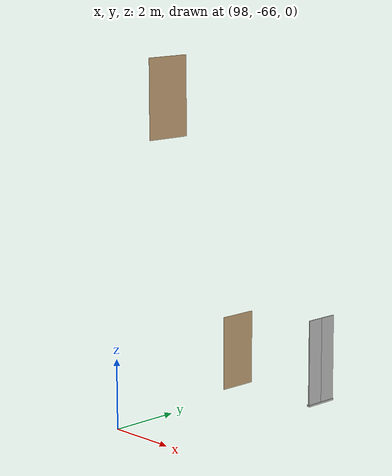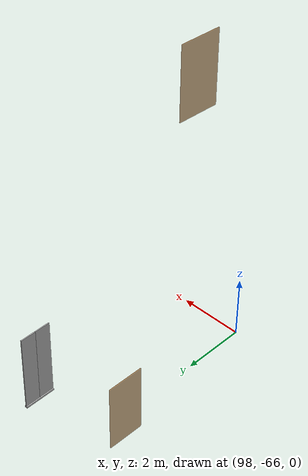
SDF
<sdf version="1.7">
 <world name="sim_world">
  <model name="puerta125">
   <pose>97.43174617866951 -60.814312581254526 0.0 0 0 -1.5801746288038012</pose>
   <link name="right">
    <pose>0 0 1.11 0 0 0</pose>
    <visual name="right_visual">
     <geometry><box><size>1.1295281473367405 0.03 2.2</size></box></geometry>
     <material>
      <ambient>0.5 0.25 0 0.6</ambient>
      <diffuse>0.5 0.25 0 0.6</diffuse>
      <pbr><metal><metalness>0.0</metalness></metal></pbr>
     </material>
    </visual>
    <collision name="right_collision">
     <geometry><box><size>1.1295281473367405 0.03 2.2</size></box></geometry>
     <surface><contact><collide_bitmask>0x02</collide_bitmask></contact></surface>
    </collision>
    <inertial>
     <mass>50.0</mass>
     <inertia><ixx>20.17041666666667</ixx><iyy>25.48264098177488</iyy><izz>5.319724315108205</izz></inertia>
    </inertial>
   </link>
   <joint name="right_joint" type="revolute">
    <parent>world</parent>
    <child>right</child>
    <axis><xyz>0 0 -1</xyz><limit><lower>0</lower><upper>1.57</upper></limit></axis>
    <pose>0.5697640736683702 0 0 0 0 0</pose>
   </joint>
   <plugin name="register_component" filename="libregister_component.so">
    <component name="Door">
     <v_max_door>0.5</v_max_door>
     <a_max_door>0.3</a_max_door>
     <a_nom_door>0.15</a_nom_door>
     <dx_min_door>0.01</dx_min_door>
     <f_max_door>500.0</f_max_door>
     <ros_interface>true</ros_interface>
     <door name="puerta125" type="SwingDoor" left_joint_name="empty_joint" right_joint_name="right_joint"/>
    </component>
   </plugin>
  </model>
  <model name="puerta200">
   <pose>98.66129579037606 -64.64360542609307 8.0 0 0 -1.6164090595668892</pose>
   <link name="right">
    <pose>0 0 1.11 0 0 0</pose>
    <visual name="right_visual">
     <geometry><box><size>1.2578228167331826 0.03 2.2</size></box></geometry>
     <material>
      <ambient>0.5 0.25 0 0.6</ambient>
      <diffuse>0.5 0.25 0 0.6</diffuse>
      <pbr><metal><metalness>0.0</metalness></metal></pbr>
     </material>
    </visual>
    <collision name="right_collision">
     <geometry><box><size>1.2578228167331826 0.03 2.2</size></box></geometry>
     <surface><contact><collide_bitmask>0x02</collide_bitmask></contact></surface>
    </collision>
    <inertial>
     <mass>50.0</mass>
     <inertia><ixx>20.17041666666667</ixx><iyy>26.758825992894163</iyy><izz>6.59590932622749</izz></inertia>
    </inertial>
   </link>
   <joint name="right_joint" type="revolute">
    <parent>world</parent>
    <child>right</child>
    <axis><xyz>0 0 -1</xyz><limit><lower>0</lower><upper>1.57</upper></limit></axis>
    <pose>0.6339114083665913 0 0 0 0 0</pose>
   </joint>
   <plugin name="register_component" filename="libregister_component.so">
    <component name="Door">
     <v_max_door>0.5</v_max_door>
     <a_max_door>0.3</a_max_door>
     <a_nom_door>0.15</a_nom_door>
     <dx_min_door>0.01</dx_min_door>
     <f_max_door>500.0</f_max_door>
     <ros_interface>true</ros_interface>
     <door name="puerta200" type="SwingDoor" left_joint_name="empty_joint" right_joint_name="right_joint"/>
    </component>
   </plugin>
  </model>
  <model name="ShaftDoor_lift1_planta_1_lift1">
   <pose>100.1814098006134 -60.16518076902038 0.0 0 0 1.5707</pose>
   <link name="right_door">
    <pose>0.25 0 1.25 0 0 0</pose>
    <visual name="right_door_visual">
     <geometry><box><size>0.5 0.03 2.5</size></box></geometry>
     <material>
      <ambient>0.5 0.5 0.5 1</ambient>
      <diffuse>0.7 0.7 0.7 1</diffuse>
      <specular>0.6 0.6 0.6 1</specular>
      <emissive>0.1 0.1 0.1 1</emissive>
     </material>
    </visual>
    <collision name="right_door_collision">
     <geometry><box><size>0.5 0.03 2.5</size></box></geometry>
     <surface><contact><collide_bitmask>0x02</collide_bitmask></contact></surface>
    </collision>
   </link>
   <link name="left_door">
    <pose>-0.25 0 1.25 0 0 0</pose>
    <visual name="left_door_visual">
     <geometry><box><size>0.5 0.03 2.5</size></box></geometry>
     <material>
      <ambient>0.5 0.5 0.5 1</ambient>
      <diffuse>0.7 0.7 0.7 1</diffuse>
      <specular>0.6 0.6 0.6 1</specular>
      <emissive>0.1 0.1 0.1 1</emissive>
     </material>
    </visual>
    <collision name="left_door_collision">
     <geometry><box><size>0.5 0.03 2.5</size></box></geometry>
     <surface><contact><collide_bitmask>0x02</collide_bitmask></contact></surface>
    </collision>
   </link>
   <joint name="right_joint" type="prismatic">
    <parent>world</parent>
    <child>right_door</child>
    <axis><xyz>1 0 0</xyz><limit><lower>0</lower><upper>0.5</upper></limit></axis>
   </joint>
   <joint name="left_joint" type="prismatic">
    <parent>world</parent>
    <child>left_door</child>
    <axis><xyz>1 0 0</xyz><limit><lower>-0.5</lower><upper>0</upper></limit></axis>
   </joint>
   <link name="ramp">
    <pose>0 0 -0.025 0 0 0</pose>
    <visual name="ramp_visual">
     <geometry><box><size>1.0 0.1 0.05</size></box></geometry>
     <material>
      <ambient>0.5 0.5 0.5 1</ambient>
      <diffuse>0.7 0.7 0.7 1</diffuse>
      <specular>0.6 0.6 0.6 1</specular>
      <emissive>0.1 0.1 0.1 1</emissive>
     </material>
    </visual>
    <collision name="ramp_collision">
     <geometry><box><size>1.0 0.1 0.05</size></box></geometry>
     <surface><contact><collide_bitmask>0x02</collide_bitmask></contact></surface>
    </collision>
   </link>
   <joint name="ramp_joint" type="fixed"><parent>world</parent><child>ramp</child></joint>
   <plugin name="register_component" filename="libregister_component.so">
    <component name="Door">
     <v_max_door>0.3</v_max_door>
     <a_max_door>0.2</a_max_door>
     <a_nom_door>0.1</a_nom_door>
     <dx_min_door>0.0001</dx_min_door>
     <f_max_door>35.0</f_max_door>
     <door left_joint_name="left_joint" name="ShaftDoor_lift1_planta_1_lift1" right_joint_name="right_joint" type="DoubleSlidingDoor"/>
    </component>
   </plugin>
  </model>
 </world>
</sdf>
